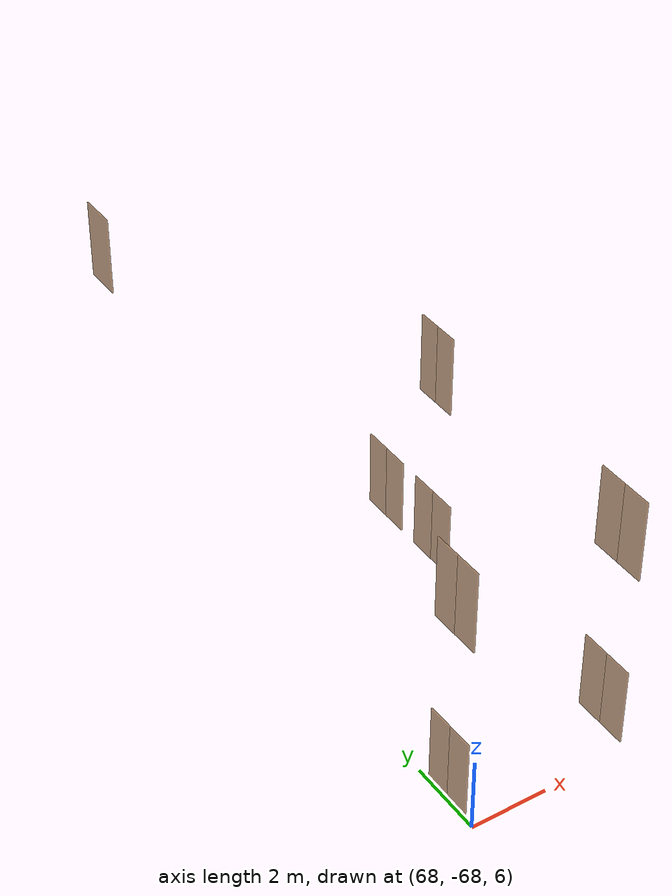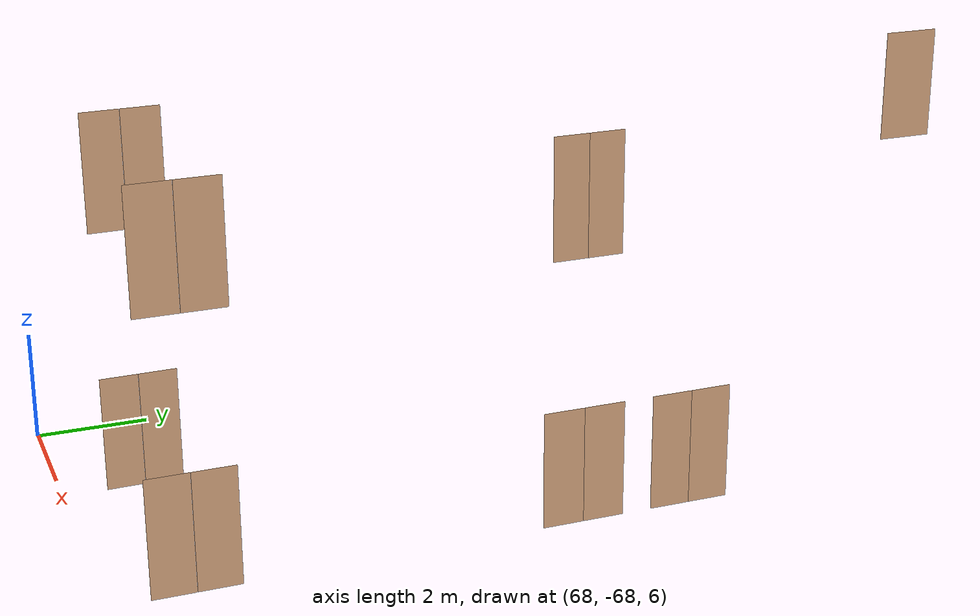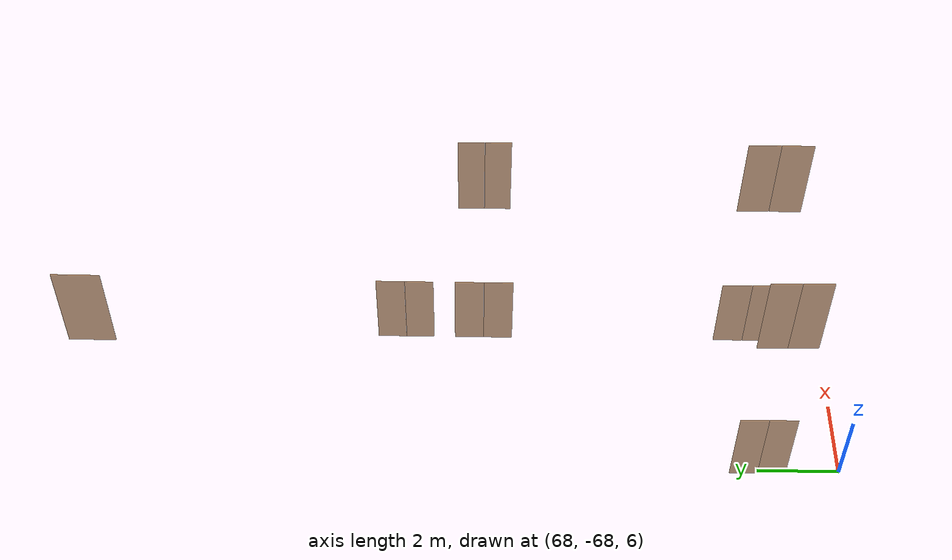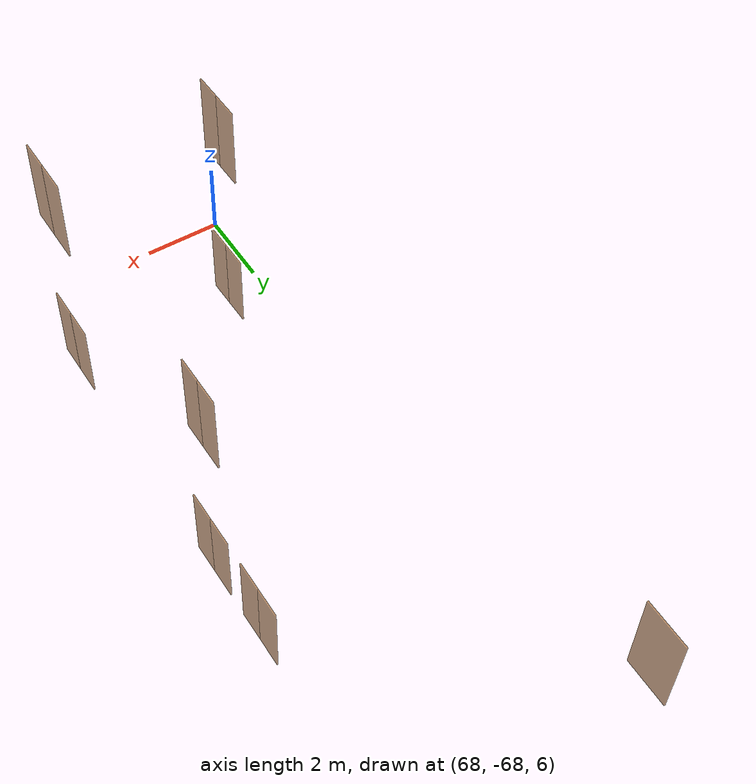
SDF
<sdf version="1.7">
 <world name="sim_world">
  <model name="puerta64">
   <pose>73.00817292570966 -57.13493181304014 5.0 0 0 1.5688085320304963</pose>
   <link name="right">
    <pose>0.3789113322508944 0 1.11 0 0 0</pose>
    <visual name="right_visual">
     <geometry><box><size>0.7478226645017888 0.03 2.2</size></box></geometry>
     <material>
      <ambient>0.5 0.25 0 0.6</ambient>
      <diffuse>0.5 0.25 0 0.6</diffuse>
      <pbr><metal><metalness>0.0</metalness></metal></pbr>
     </material>
    </visual>
    <collision name="right_collision">
     <geometry><box><size>0.7478226645017888 0.03 2.2</size></box></geometry>
     <surface><contact><collide_bitmask>0x02</collide_bitmask></contact></surface>
    </collision>
    <inertial>
     <mass>50.0</mass>
     <inertia><ixx>20.17041666666667</ixx><iyy>22.496828073093983</iyy><izz>2.3339114064273123</izz></inertia>
    </inertial>
   </link>
   <joint name="right_joint" type="revolute">
    <parent>world</parent>
    <child>right</child>
    <axis><xyz>0 0 -1</xyz><limit><lower>0</lower><upper>1.57</upper></limit></axis>
    <pose>0.3789113322508944 0 0 0 0 0</pose>
   </joint>
   <link name="left">
    <pose>-0.3789113322508944 0 1.11 0 0 0</pose>
    <visual name="left_visual">
     <geometry><box><size>0.7478226645017888 0.03 2.2</size></box></geometry>
     <material>
      <ambient>0.5 0.25 0 0.6</ambient>
      <diffuse>0.5 0.25 0 0.6</diffuse>
      <pbr><metal><metalness>0.0</metalness></metal></pbr>
     </material>
    </visual>
    <collision name="left_collision">
     <geometry><box><size>0.7478226645017888 0.03 2.2</size></box></geometry>
     <surface><contact><collide_bitmask>0x02</collide_bitmask></contact></surface>
    </collision>
    <inertial>
     <mass>50.0</mass>
     <inertia><ixx>20.17041666666667</ixx><iyy>22.496828073093983</iyy><izz>2.3339114064273123</izz></inertia>
    </inertial>
   </link>
   <joint name="left_joint" type="revolute">
    <parent>world</parent>
    <child>left</child>
    <axis><xyz>0 0 -1</xyz><limit><lower>-1.57</lower><upper>0</upper></limit></axis>
    <pose>-0.3789113322508944 0 0 0 0 0</pose>
   </joint>
   <plugin name="register_component" filename="libregister_component.so">
    <component name="Door">
     <v_max_door>0.5</v_max_door>
     <a_max_door>0.3</a_max_door>
     <a_nom_door>0.15</a_nom_door>
     <dx_min_door>0.01</dx_min_door>
     <f_max_door>500.0</f_max_door>
     <ros_interface>true</ros_interface>
     <door name="puerta64" type="DoubleSwingDoor" left_joint_name="left_joint" right_joint_name="right_joint"/>
    </component>
   </plugin>
  </model>
  <model name="puerta65">
   <pose>73.00686949506047 -59.21880901982131 5.0 0 0 1.5709493853957193</pose>
   <link name="right">
    <pose>0.3851999875897891 0 1.11 0 0 0</pose>
    <visual name="right_visual">
     <geometry><box><size>0.7603999751795781 0.03 2.2</size></box></geometry>
     <material>
      <ambient>0.5 0.25 0 0.6</ambient>
      <diffuse>0.5 0.25 0 0.6</diffuse>
      <pbr><metal><metalness>0.0</metalness></metal></pbr>
     </material>
    </visual>
    <collision name="right_collision">
     <geometry><box><size>0.7603999751795781 0.03 2.2</size></box></geometry>
     <surface><contact><collide_bitmask>0x02</collide_bitmask></contact></surface>
    </collision>
    <inertial>
     <mass>50.0</mass>
     <inertia><ixx>20.17041666666667</ixx><iyy>22.5758671760546</iyy><izz>2.4129505093879295</izz></inertia>
    </inertial>
   </link>
   <joint name="right_joint" type="revolute">
    <parent>world</parent>
    <child>right</child>
    <axis><xyz>0 0 -1</xyz><limit><lower>0</lower><upper>1.57</upper></limit></axis>
    <pose>0.3851999875897891 0 0 0 0 0</pose>
   </joint>
   <link name="left">
    <pose>-0.3851999875897891 0 1.11 0 0 0</pose>
    <visual name="left_visual">
     <geometry><box><size>0.7603999751795781 0.03 2.2</size></box></geometry>
     <material>
      <ambient>0.5 0.25 0 0.6</ambient>
      <diffuse>0.5 0.25 0 0.6</diffuse>
      <pbr><metal><metalness>0.0</metalness></metal></pbr>
     </material>
    </visual>
    <collision name="left_collision">
     <geometry><box><size>0.7603999751795781 0.03 2.2</size></box></geometry>
     <surface><contact><collide_bitmask>0x02</collide_bitmask></contact></surface>
    </collision>
    <inertial>
     <mass>50.0</mass>
     <inertia><ixx>20.17041666666667</ixx><iyy>22.5758671760546</iyy><izz>2.4129505093879295</izz></inertia>
    </inertial>
   </link>
   <joint name="left_joint" type="revolute">
    <parent>world</parent>
    <child>left</child>
    <axis><xyz>0 0 -1</xyz><limit><lower>-1.57</lower><upper>0</upper></limit></axis>
    <pose>-0.3851999875897891 0 0 0 0 0</pose>
   </joint>
   <plugin name="register_component" filename="libregister_component.so">
    <component name="Door">
     <v_max_door>0.5</v_max_door>
     <a_max_door>0.3</a_max_door>
     <a_nom_door>0.15</a_nom_door>
     <dx_min_door>0.01</dx_min_door>
     <f_max_door>500.0</f_max_door>
     <ros_interface>true</ros_interface>
     <door name="puerta65" type="DoubleSwingDoor" left_joint_name="left_joint" right_joint_name="right_joint"/>
    </component>
   </plugin>
  </model>
  <model name="puerta66">
   <pose>73.00794286730232 -66.2316278206275 5.0 0 0 1.5709493853957266</pose>
   <link name="right">
    <pose>0.39398976359070365 0 1.11 0 0 0</pose>
    <visual name="right_visual">
     <geometry><box><size>0.7779795271814073 0.03 2.2</size></box></geometry>
     <material>
      <ambient>0.5 0.25 0 0.6</ambient>
      <diffuse>0.5 0.25 0 0.6</diffuse>
      <pbr><metal><metalness>0.0</metalness></metal></pbr>
     </material>
    </visual>
    <collision name="right_collision">
     <geometry><box><size>0.7779795271814073 0.03 2.2</size></box></geometry>
     <surface><contact><collide_bitmask>0x02</collide_bitmask></contact></surface>
    </collision>
    <inertial>
     <mass>50.0</mass>
     <inertia><ixx>20.17041666666667</ixx><iyy>22.68855060297253</iyy><izz>2.5256339363058586</izz></inertia>
    </inertial>
   </link>
   <joint name="right_joint" type="revolute">
    <parent>world</parent>
    <child>right</child>
    <axis><xyz>0 0 -1</xyz><limit><lower>0</lower><upper>1.57</upper></limit></axis>
    <pose>0.39398976359070365 0 0 0 0 0</pose>
   </joint>
   <link name="left">
    <pose>-0.39398976359070365 0 1.11 0 0 0</pose>
    <visual name="left_visual">
     <geometry><box><size>0.7779795271814073 0.03 2.2</size></box></geometry>
     <material>
      <ambient>0.5 0.25 0 0.6</ambient>
      <diffuse>0.5 0.25 0 0.6</diffuse>
      <pbr><metal><metalness>0.0</metalness></metal></pbr>
     </material>
    </visual>
    <collision name="left_collision">
     <geometry><box><size>0.7779795271814073 0.03 2.2</size></box></geometry>
     <surface><contact><collide_bitmask>0x02</collide_bitmask></contact></surface>
    </collision>
    <inertial>
     <mass>50.0</mass>
     <inertia><ixx>20.17041666666667</ixx><iyy>22.68855060297253</iyy><izz>2.5256339363058586</izz></inertia>
    </inertial>
   </link>
   <joint name="left_joint" type="revolute">
    <parent>world</parent>
    <child>left</child>
    <axis><xyz>0 0 -1</xyz><limit><lower>-1.57</lower><upper>0</upper></limit></axis>
    <pose>-0.39398976359070365 0 0 0 0 0</pose>
   </joint>
   <plugin name="register_component" filename="libregister_component.so">
    <component name="Door">
     <v_max_door>0.5</v_max_door>
     <a_max_door>0.3</a_max_door>
     <a_nom_door>0.15</a_nom_door>
     <dx_min_door>0.01</dx_min_door>
     <f_max_door>500.0</f_max_door>
     <ros_interface>true</ros_interface>
     <door name="puerta66" type="DoubleSwingDoor" left_joint_name="left_joint" right_joint_name="right_joint"/>
    </component>
   </plugin>
  </model>
  <model name="puerta69">
   <pose>68.64234195664 -66.20089284365329 5.0 0 0 -1.5587318684142184</pose>
   <link name="right">
    <pose>0.3582449006446188 0 1.11 0 0 0</pose>
    <visual name="right_visual">
     <geometry><box><size>0.7064898012892376 0.03 2.2</size></box></geometry>
     <material>
      <ambient>0.5 0.25 0 0.6</ambient>
      <diffuse>0.5 0.25 0 0.6</diffuse>
      <pbr><metal><metalness>0.0</metalness></metal></pbr>
     </material>
    </visual>
    <collision name="right_collision">
     <geometry><box><size>0.7064898012892376 0.03 2.2</size></box></geometry>
     <surface><contact><collide_bitmask>0x02</collide_bitmask></contact></surface>
    </collision>
    <inertial>
     <mass>50.0</mass>
     <inertia><ixx>20.17041666666667</ixx><iyy>22.24636599719045</iyy><izz>2.0834493305237767</izz></inertia>
    </inertial>
   </link>
   <joint name="right_joint" type="revolute">
    <parent>world</parent>
    <child>right</child>
    <axis><xyz>0 0 -1</xyz><limit><lower>0</lower><upper>1.57</upper></limit></axis>
    <pose>0.3582449006446188 0 0 0 0 0</pose>
   </joint>
   <link name="left">
    <pose>-0.3582449006446188 0 1.11 0 0 0</pose>
    <visual name="left_visual">
     <geometry><box><size>0.7064898012892376 0.03 2.2</size></box></geometry>
     <material>
      <ambient>0.5 0.25 0 0.6</ambient>
      <diffuse>0.5 0.25 0 0.6</diffuse>
      <pbr><metal><metalness>0.0</metalness></metal></pbr>
     </material>
    </visual>
    <collision name="left_collision">
     <geometry><box><size>0.7064898012892376 0.03 2.2</size></box></geometry>
     <surface><contact><collide_bitmask>0x02</collide_bitmask></contact></surface>
    </collision>
    <inertial>
     <mass>50.0</mass>
     <inertia><ixx>20.17041666666667</ixx><iyy>22.24636599719045</iyy><izz>2.0834493305237767</izz></inertia>
    </inertial>
   </link>
   <joint name="left_joint" type="revolute">
    <parent>world</parent>
    <child>left</child>
    <axis><xyz>0 0 -1</xyz><limit><lower>-1.57</lower><upper>0</upper></limit></axis>
    <pose>-0.3582449006446188 0 0 0 0 0</pose>
   </joint>
   <plugin name="register_component" filename="libregister_component.so">
    <component name="Door">
     <v_max_door>0.5</v_max_door>
     <a_max_door>0.3</a_max_door>
     <a_nom_door>0.15</a_nom_door>
     <dx_min_door>0.01</dx_min_door>
     <f_max_door>500.0</f_max_door>
     <ros_interface>true</ros_interface>
     <door name="puerta69" type="DoubleSwingDoor" left_joint_name="left_joint" right_joint_name="right_joint"/>
    </component>
   </plugin>
  </model>
  <model name="puerta141">
   <pose>73.00008978919627 -59.20054441559316 10.0 0 0 1.5737996975282573</pose>
   <link name="right">
    <pose>0.3218319921121827 0 1.11 0 0 0</pose>
    <visual name="right_visual">
     <geometry><box><size>0.6336639842243654 0.03 2.2</size></box></geometry>
     <material>
      <ambient>0.5 0.25 0 0.6</ambient>
      <diffuse>0.5 0.25 0 0.6</diffuse>
      <pbr><metal><metalness>0.0</metalness></metal></pbr>
     </material>
    </visual>
    <collision name="right_collision">
     <geometry><box><size>0.6336639842243654 0.03 2.2</size></box></geometry>
     <surface><contact><collide_bitmask>0x02</collide_bitmask></contact></surface>
    </collision>
    <inertial>
     <mass>50.0</mass>
     <inertia><ixx>20.17041666666667</ixx><iyy>21.839708520429575</iyy><izz>1.6767918537629036</izz></inertia>
    </inertial>
   </link>
   <joint name="right_joint" type="revolute">
    <parent>world</parent>
    <child>right</child>
    <axis><xyz>0 0 -1</xyz><limit><lower>0</lower><upper>1.57</upper></limit></axis>
    <pose>0.3218319921121827 0 0 0 0 0</pose>
   </joint>
   <link name="left">
    <pose>-0.3218319921121827 0 1.11 0 0 0</pose>
    <visual name="left_visual">
     <geometry><box><size>0.6336639842243654 0.03 2.2</size></box></geometry>
     <material>
      <ambient>0.5 0.25 0 0.6</ambient>
      <diffuse>0.5 0.25 0 0.6</diffuse>
      <pbr><metal><metalness>0.0</metalness></metal></pbr>
     </material>
    </visual>
    <collision name="left_collision">
     <geometry><box><size>0.6336639842243654 0.03 2.2</size></box></geometry>
     <surface><contact><collide_bitmask>0x02</collide_bitmask></contact></surface>
    </collision>
    <inertial>
     <mass>50.0</mass>
     <inertia><ixx>20.17041666666667</ixx><iyy>21.839708520429575</iyy><izz>1.6767918537629036</izz></inertia>
    </inertial>
   </link>
   <joint name="left_joint" type="revolute">
    <parent>world</parent>
    <child>left</child>
    <axis><xyz>0 0 -1</xyz><limit><lower>-1.57</lower><upper>0</upper></limit></axis>
    <pose>-0.3218319921121827 0 0 0 0 0</pose>
   </joint>
   <plugin name="register_component" filename="libregister_component.so">
    <component name="Door">
     <v_max_door>0.5</v_max_door>
     <a_max_door>0.3</a_max_door>
     <a_nom_door>0.15</a_nom_door>
     <dx_min_door>0.01</dx_min_door>
     <f_max_door>500.0</f_max_door>
     <ros_interface>true</ros_interface>
     <door name="puerta141" type="DoubleSwingDoor" left_joint_name="left_joint" right_joint_name="right_joint"/>
    </component>
   </plugin>
  </model>
  <model name="puerta142">
   <pose>73.00834550838061 -66.23195726400618 10.0 0 0 1.5709510958726032</pose>
   <link name="right">
    <pose>0.3939943683878775 0 1.11 0 0 0</pose>
    <visual name="right_visual">
     <geometry><box><size>0.777988736775755 0.03 2.2</size></box></geometry>
     <material>
      <ambient>0.5 0.25 0 0.6</ambient>
      <diffuse>0.5 0.25 0 0.6</diffuse>
      <pbr><metal><metalness>0.0</metalness></metal></pbr>
     </material>
    </visual>
    <collision name="right_collision">
     <geometry><box><size>0.777988736775755 0.03 2.2</size></box></geometry>
     <surface><contact><collide_bitmask>0x02</collide_bitmask></contact></surface>
    </collision>
    <inertial>
     <mass>50.0</mass>
     <inertia><ixx>20.17041666666667</ixx><iyy>22.688610310624732</iyy><izz>2.525693643958063</izz></inertia>
    </inertial>
   </link>
   <joint name="right_joint" type="revolute">
    <parent>world</parent>
    <child>right</child>
    <axis><xyz>0 0 -1</xyz><limit><lower>0</lower><upper>1.57</upper></limit></axis>
    <pose>0.3939943683878775 0 0 0 0 0</pose>
   </joint>
   <link name="left">
    <pose>-0.3939943683878775 0 1.11 0 0 0</pose>
    <visual name="left_visual">
     <geometry><box><size>0.777988736775755 0.03 2.2</size></box></geometry>
     <material>
      <ambient>0.5 0.25 0 0.6</ambient>
      <diffuse>0.5 0.25 0 0.6</diffuse>
      <pbr><metal><metalness>0.0</metalness></metal></pbr>
     </material>
    </visual>
    <collision name="left_collision">
     <geometry><box><size>0.777988736775755 0.03 2.2</size></box></geometry>
     <surface><contact><collide_bitmask>0x02</collide_bitmask></contact></surface>
    </collision>
    <inertial>
     <mass>50.0</mass>
     <inertia><ixx>20.17041666666667</ixx><iyy>22.688610310624732</iyy><izz>2.525693643958063</izz></inertia>
    </inertial>
   </link>
   <joint name="left_joint" type="revolute">
    <parent>world</parent>
    <child>left</child>
    <axis><xyz>0 0 -1</xyz><limit><lower>-1.57</lower><upper>0</upper></limit></axis>
    <pose>-0.3939943683878775 0 0 0 0 0</pose>
   </joint>
   <plugin name="register_component" filename="libregister_component.so">
    <component name="Door">
     <v_max_door>0.5</v_max_door>
     <a_max_door>0.3</a_max_door>
     <a_nom_door>0.15</a_nom_door>
     <dx_min_door>0.01</dx_min_door>
     <f_max_door>500.0</f_max_door>
     <ros_interface>true</ros_interface>
     <door name="puerta142" type="DoubleSwingDoor" left_joint_name="left_joint" right_joint_name="right_joint"/>
    </component>
   </plugin>
  </model>
  <model name="puerta145">
   <pose>68.64269352172866 -66.20122939516042 10.0 0 0 -1.5587301579373436</pose>
   <link name="right">
    <pose>0.35824908766991576 0 1.11 0 0 0</pose>
    <visual name="right_visual">
     <geometry><box><size>0.7064981753398315 0.03 2.2</size></box></geometry>
     <material>
      <ambient>0.5 0.25 0 0.6</ambient>
      <diffuse>0.5 0.25 0 0.6</diffuse>
      <pbr><metal><metalness>0.0</metalness></metal></pbr>
     </material>
    </visual>
    <collision name="right_collision">
     <geometry><box><size>0.7064981753398315 0.03 2.2</size></box></geometry>
     <surface><contact><collide_bitmask>0x02</collide_bitmask></contact></surface>
    </collision>
    <inertial>
     <mass>50.0</mass>
     <inertia><ixx>20.17041666666667</ixx><iyy>22.246415298993803</iyy><izz>2.0834986323271303</izz></inertia>
    </inertial>
   </link>
   <joint name="right_joint" type="revolute">
    <parent>world</parent>
    <child>right</child>
    <axis><xyz>0 0 -1</xyz><limit><lower>0</lower><upper>1.57</upper></limit></axis>
    <pose>0.35824908766991576 0 0 0 0 0</pose>
   </joint>
   <link name="left">
    <pose>-0.35824908766991576 0 1.11 0 0 0</pose>
    <visual name="left_visual">
     <geometry><box><size>0.7064981753398315 0.03 2.2</size></box></geometry>
     <material>
      <ambient>0.5 0.25 0 0.6</ambient>
      <diffuse>0.5 0.25 0 0.6</diffuse>
      <pbr><metal><metalness>0.0</metalness></metal></pbr>
     </material>
    </visual>
    <collision name="left_collision">
     <geometry><box><size>0.7064981753398315 0.03 2.2</size></box></geometry>
     <surface><contact><collide_bitmask>0x02</collide_bitmask></contact></surface>
    </collision>
    <inertial>
     <mass>50.0</mass>
     <inertia><ixx>20.17041666666667</ixx><iyy>22.246415298993803</iyy><izz>2.0834986323271303</izz></inertia>
    </inertial>
   </link>
   <joint name="left_joint" type="revolute">
    <parent>world</parent>
    <child>left</child>
    <axis><xyz>0 0 -1</xyz><limit><lower>-1.57</lower><upper>0</upper></limit></axis>
    <pose>-0.35824908766991576 0 0 0 0 0</pose>
   </joint>
   <plugin name="register_component" filename="libregister_component.so">
    <component name="Door">
     <v_max_door>0.5</v_max_door>
     <a_max_door>0.3</a_max_door>
     <a_nom_door>0.15</a_nom_door>
     <dx_min_door>0.01</dx_min_door>
     <f_max_door>500.0</f_max_door>
     <ros_interface>true</ros_interface>
     <door name="puerta145" type="DoubleSwingDoor" left_joint_name="left_joint" right_joint_name="right_joint"/>
    </component>
   </plugin>
  </model>
  <model name="puerta207">
   <pose>68.64533344502843 -50.23057475675169 10.0 0 0 -1.5790088834606013</pose>
   <link name="right">
    <pose>0 0 1.11 0 0 0</pose>
    <visual name="right_visual">
     <geometry><box><size>1.0843393172040579 0.03 2.2</size></box></geometry>
     <material>
      <ambient>0.5 0.25 0 0.6</ambient>
      <diffuse>0.5 0.25 0 0.6</diffuse>
      <pbr><metal><metalness>0.0</metalness></metal></pbr>
     </material>
    </visual>
    <collision name="right_collision">
     <geometry><box><size>1.0843393172040579 0.03 2.2</size></box></geometry>
     <surface><contact><collide_bitmask>0x02</collide_bitmask></contact></surface>
    </collision>
    <inertial>
     <mass>50.0</mass>
     <inertia><ixx>20.17041666666667</ixx><iyy>25.065798978477346</iyy><izz>4.902882311810677</izz></inertia>
    </inertial>
   </link>
   <joint name="right_joint" type="revolute">
    <parent>world</parent>
    <child>right</child>
    <axis><xyz>0 0 -1</xyz><limit><lower>0</lower><upper>1.57</upper></limit></axis>
    <pose>0.5471696586020289 0 0 0 0 0</pose>
   </joint>
   <plugin name="register_component" filename="libregister_component.so">
    <component name="Door">
     <v_max_door>0.5</v_max_door>
     <a_max_door>0.3</a_max_door>
     <a_nom_door>0.15</a_nom_door>
     <dx_min_door>0.01</dx_min_door>
     <f_max_door>500.0</f_max_door>
     <ros_interface>true</ros_interface>
     <door name="puerta207" type="SwingDoor" left_joint_name="empty_joint" right_joint_name="right_joint"/>
    </component>
   </plugin>
  </model>
 </world>
</sdf>
